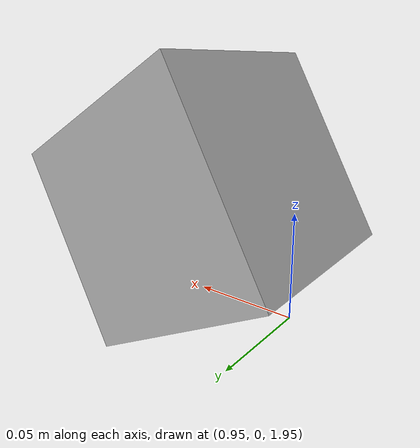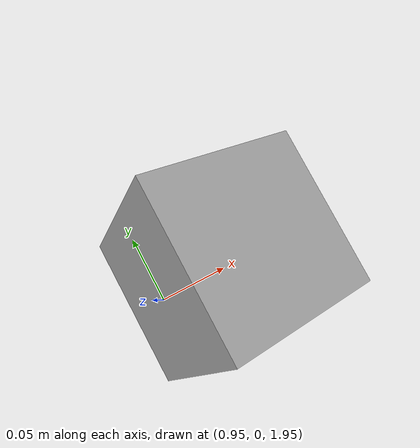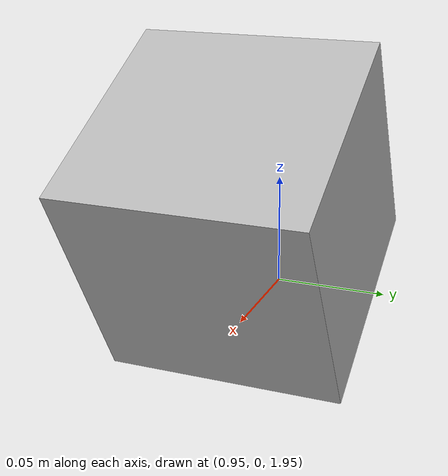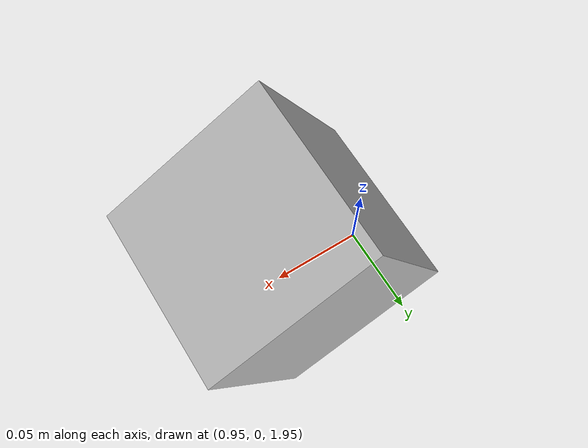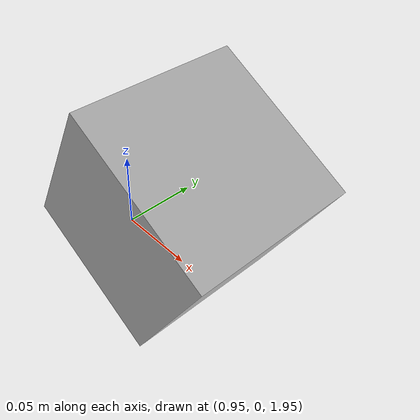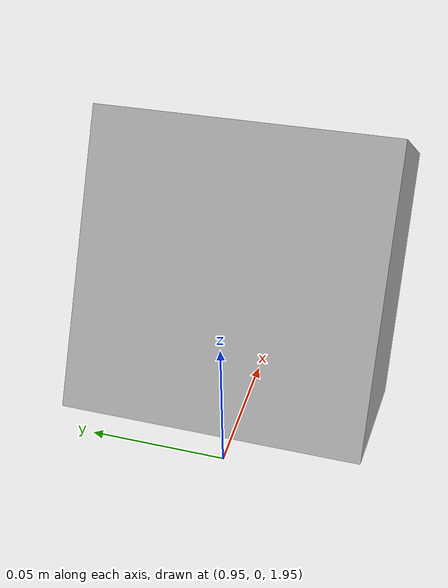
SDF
<?xml version="1.0" ?>
<sdf version="1.8">
  <world name="pick_place">

    <include>
      <uri>model://ground_plane</uri>
    </include>

    <include>
      <uri>model://sun</uri>
    </include>

    <!-- Static camera -->
    <include>
      <uri>model://camera</uri>
      <pose>1 0 2 0 -0.5 3.14</pose>
    </include>

  </world>
</sdf>

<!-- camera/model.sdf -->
<sdf version="1.5">
  <model name="camera">
    <pose>0 0 0.05 0 0 0</pose>
    <link name="link">
      <inertial>
        <mass>0.1</mass>
        <inertia>
          <ixx>0.000166667</ixx>
          <iyy>0.000166667</iyy>
          <izz>0.000166667</izz>
        </inertia>
      </inertial>
      <collision name="collision">
        <geometry>
          <box>
            <size>0.1 0.1 0.1</size>
          </box>
        </geometry>
      </collision>
      <visual name="visual">
        <geometry>
          <box>
            <size>0.1 0.1 0.1</size>
          </box>
        </geometry>
      </visual>
      <sensor name="camera" type="camera">
        <camera>
          <horizontal_fov>1.047</horizontal_fov>
          <image>
            <width>320</width>
            <height>240</height>
          </image>
          <clip>
            <near>0.1</near>
            <far>100</far>
          </clip>
        </camera>
        <always_on>1</always_on>
        <update_rate>30</update_rate>
        <visualize>true</visualize>
      </sensor>
    </link>
  </model>
</sdf>
